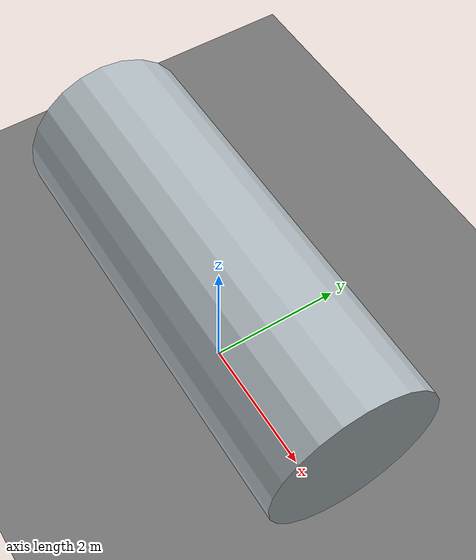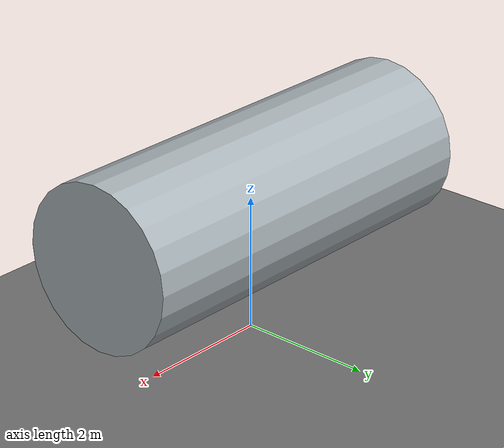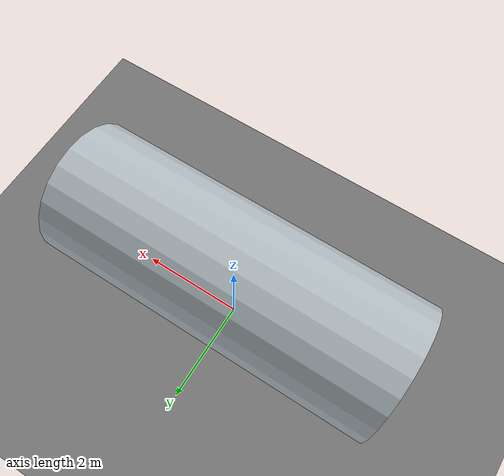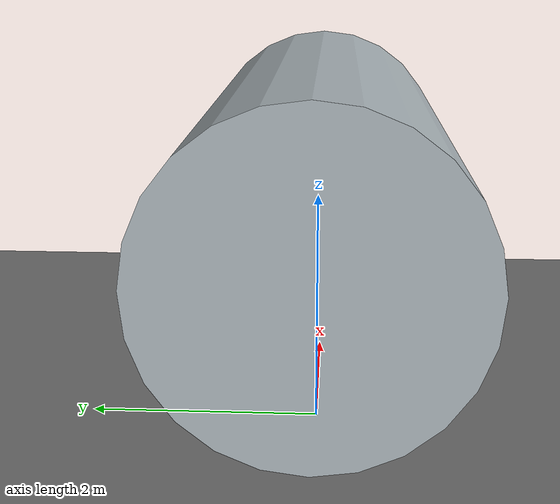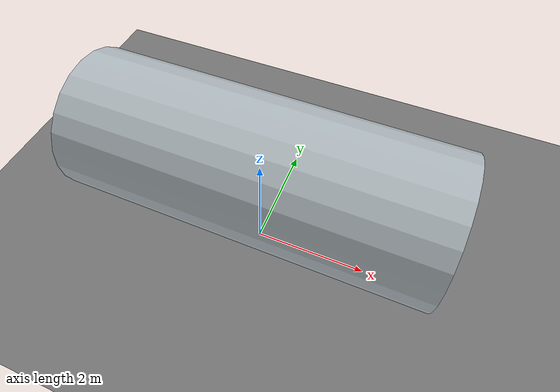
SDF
<?xml version="1.0" ?>
<sdf version="1.8">
  <world name="horizontal_pipe_test">
    <gravity>0 0 -9.8</gravity>
    <physics name="1ms" type="ode">
      <max_step_size>0.001</max_step_size>
      <real_time_update_rate>1000</real_time_update_rate>
      <real_time_factor>1.0</real_time_factor>
      <ode>
        <solver>
          <type>quick</type>
          <iters>250</iters>
          <sor>1.3</sor>
        </solver>
        <constraints>
          <cfm>0.0</cfm>
          <erp>0.2</erp>
          <contact_max_correcting_vel>0.01</contact_max_correcting_vel>
          <contact_surface_layer>0.0001</contact_surface_layer>
        </constraints>
      </ode>
    </physics>

    <plugin filename="gz-sim-physics-system" name="gz::sim::systems::Physics"/>
    <plugin filename="gz-sim-user-commands-system" name="gz::sim::systems::UserCommands"/>
    <plugin filename="gz-sim-apply-link-wrench-system" name="gz::sim::systems::ApplyLinkWrench"/>
    <plugin filename="gz-sim-contact-system" name="gz::sim::systems::Contact"/>
    <plugin filename="gz-sim-scene-broadcaster-system" name="gz::sim::systems::SceneBroadcaster"/>

    <light type="directional" name="sun">
      <cast_shadows>true</cast_shadows>
      <pose>0 0 10 0 0 0</pose>
      <diffuse>0.8 0.8 0.8 1</diffuse>
      <specular>0.2 0.2 0.2 1</specular>
      <direction>-0.4 0.2 -0.9</direction>
    </light>

    <model name="ground_plane">
      <static>true</static>
      <link name="link">
        <collision name="collision">
          <geometry><plane><normal>0 0 1</normal></plane></geometry>
          <surface>
            <friction>
              <ode>
                <mu>1.0</mu>
                <mu2>1.0</mu2>
              </ode>
            </friction>
          </surface>
        </collision>
        <visual name="visual">
          <geometry><plane><normal>0 0 1</normal></plane></geometry>
          <material>
            <ambient>0.45 0.45 0.45 1</ambient>
            <diffuse>0.45 0.45 0.45 1</diffuse>
          </material>
        </visual>
      </link>
    </model>

    <!-- Radius is 1.20 m and the center is at z=2.00 m, so the pipe is raised
         for side-attachment tests without intersecting the ground. -->
    <include>
      <uri>model://horizontal_pipe</uri>
      <pose>0 0 2.00 0 0 0</pose>
    </include>
  </world>
</sdf>

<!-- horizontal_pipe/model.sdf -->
<sdf version="1.8">
  <model name="horizontal_pipe">
    <static>true</static>

    <link name="pipe_link">
      <collision name="pipe_collision">
        <!-- Gazebo cylinders are Z-axis aligned by default. Rotating the link
             90 deg about Y makes this pipe run horizontally along world X. -->
        <pose>0 0 0 0 1.57079632679 0</pose>
        <geometry>
          <cylinder>
            <radius>1.20</radius>
            <length>6.00</length>
          </cylinder>
        </geometry>
        <surface>
          <friction>
            <ode>
              <mu>1.6</mu>
              <mu2>1.6</mu2>
            </ode>
          </friction>
          <contact>
            <ode>
              <kp>250000</kp>
              <kd>80</kd>
              <max_vel>0.20</max_vel>
              <min_depth>0.006</min_depth>
            </ode>
          </contact>
        </surface>
      </collision>

      <visual name="pipe_visual">
        <pose>0 0 0 0 1.57079632679 0</pose>
        <geometry>
          <cylinder>
            <radius>1.20</radius>
            <length>6.00</length>
          </cylinder>
        </geometry>
        <material>
          <ambient>0.55 0.58 0.60 1</ambient>
          <diffuse>0.68 0.72 0.74 1</diffuse>
          <specular>0.35 0.35 0.35 1</specular>
        </material>
      </visual>
    </link>
  </model>
</sdf>
